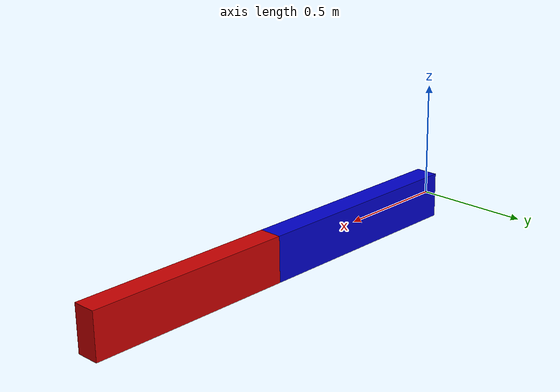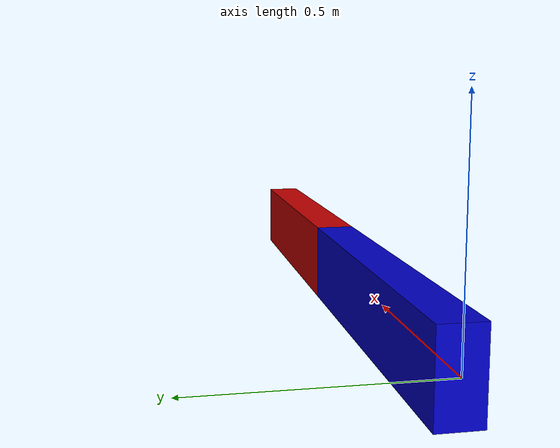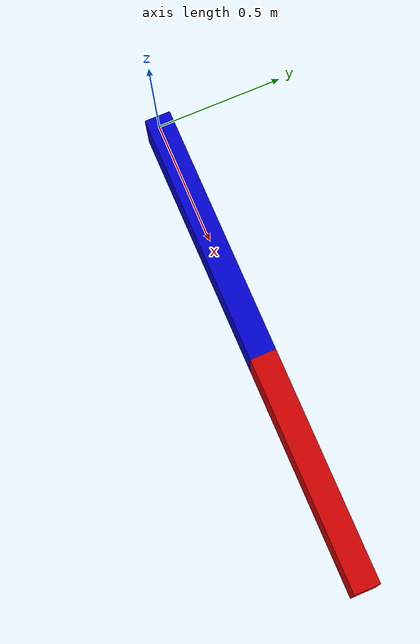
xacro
<?xml version="1.0"?>
<robot xmlns:xacro="http://www.ros.org/wiki/xacro" name="arm2">

  <xacro:property name="L1" value="1" />
  <xacro:property name="L2" value=".9" />
  <xacro:property name="pi" value="3.1415" />

  <xacro:macro name="default_inertial" params="mass">
    <inertial>
        <origin xyz="0 0 0" rpy="0 0 0" />
        <mass value="${mass}" />
        <inertia ixx="1.0" ixy="0.0" ixz="0.0"
           iyy="1.0" iyz="0.0"
           izz="1.0" />
    </inertial>
  </xacro:macro>

  <link name="base_link"/>

  <link name="first_link">
    <visual>
      <origin xyz="${L1/2} 0 0" rpy="0 0 0" />
      <geometry>
         <box size="${L1} 0.1 0.2"/>
      </geometry>
      <material name="blue">
        <color rgba="0 0 .8 1"/>
      </material>
    </visual>
    <collision>
      <origin xyz="${L1/2} 0 0" rpy="0 0 0" />
      <geometry>
         <box size="${L1} .2 .1"/>
      </geometry>
    </collision>
    <xacro:default_inertial mass="10"/>
  </link>

  <link name="second_link">
    <visual>
      <origin xyz="${L2/2} 0 0" rpy="0 0 0" />
      <geometry>
         <box size="${L2} 0.1 0.2"/>
      </geometry>
      <material name="red">
        <color rgba="0.8 0 0 1"/>
      </material>
    </visual>
    <collision>
      <origin xyz="0 0 0" rpy="0 0 0" />
      <geometry>
         <box size="${L2} .1 .2"/>
      </geometry>
    </collision>
    <xacro:default_inertial mass="10"/>
  </link>

  <joint name="joint_base_first" type="revolute">
    <parent link="base_link"/>
    <child link="first_link"/>
    <origin xyz="0 0 0" rpy="0 0 0" />
    <axis xyz="1 0 0" />
    <limit lower="-${pi}" upper="${pi}" effort="10" velocity="1.0"/>
  </joint>

  <joint name="joint_first_second" type="revolute">
    <parent link="first_link"/>
    <child link="second_link"/>
    <origin xyz="${L1} 0 0" rpy="0 0 0" />
    <axis xyz="1 0 0" />
    <limit lower="-${pi}" upper="${pi}" effort="10" velocity="1.0"/>
  </joint>
  <transmission name="link_tran1">
    <type>transmission_interface/SimpleTransmission</type>
    <robotNamespace>link1</robotNamespace>
    <joint name="joint_base_first">
      <hardwareInterface>PositionJointInterface</hardwareInterface>
    </joint>
    <actuator name="link_motor1">
      <mechanicalReduction>1</mechanicalReduction>
    </actuator>
  </transmission>

  <transmission name="link_tran2">
    <type>transmission_interface/SimpleTransmission</type>
    <robotNamespace>link2</robotNamespace>
    <joint name="joint_first_second">
      <hardwareInterface>PositionJointInterface</hardwareInterface>
    </joint>
    <actuator name="link_motor2">
      <mechanicalReduction>1</mechanicalReduction>
    </actuator>
  </transmission>
</robot>
